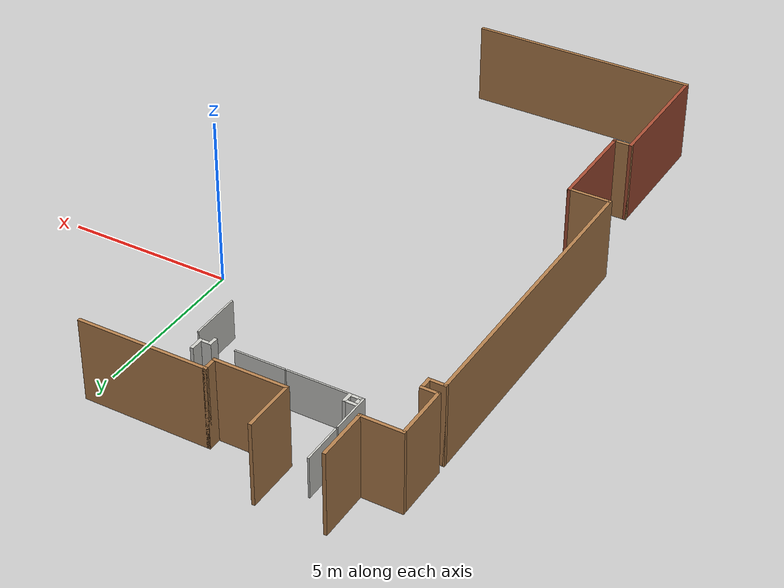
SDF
<sdf version="1.7">
 <model name="miraikan_3F_gate_and_elevator">
  <link name="Wall_331">
   <pose>-9.1375 3.955 0 0 0 -1.5708</pose>
   <visual name="Wall_331_Visual">
    <pose>0 0 0.625 0 -0 0</pose>
    <geometry><box><size>1.25 0.05 1.25</size></box></geometry>
    <material>
     <script><uri>file://media/materials/scripts/gazebo.material</uri><name>Gazebo/CeilingTiled</name></script>
     <ambient>1 1 1 1</ambient>
     <shader type="pixel"/>
    </material>
    <meta><layer>0</layer></meta>
   </visual>
   <collision name="Wall_331_Collision">
    <pose>0 0 0.625 0 -0 0</pose>
    <geometry><box><size>1.25 0.05 1.25</size></box></geometry>
    <surface>
     <friction>
      <ode><mu>1</mu><mu2>1</mu2><fdir1>0 0 0</fdir1><slip1>0</slip1><slip2>0</slip2></ode>
      <torsional>
       <coefficient>1</coefficient>
       <patch_radius>0</patch_radius>
       <surface_radius>0</surface_radius>
       <use_patch_radius>1</use_patch_radius>
       <ode><slip>0</slip></ode>
      </torsional>
     </friction>
     <bounce><restitution_coefficient>0</restitution_coefficient><threshold>1e+06</threshold></bounce>
     <contact>
      <collide_without_contact>0</collide_without_contact>
      <collide_without_contact_bitmask>1</collide_without_contact_bitmask>
      <collide_bitmask>1</collide_bitmask>
      <ode>
       <soft_cfm>0</soft_cfm>
       <soft_erp>0.2</soft_erp>
       <kp>1e+13</kp>
       <kd>1</kd>
       <max_vel>0.01</max_vel>
       <min_depth>0</min_depth>
      </ode>
      <bullet>
       <split_impulse>1</split_impulse>
       <split_impulse_penetration_threshold>-0.01</split_impulse_penetration_threshold>
       <soft_cfm>0</soft_cfm>
       <soft_erp>0.2</soft_erp>
       <kp>1e+13</kp>
       <kd>1</kd>
      </bullet>
     </contact>
    </surface>
   </collision>
  </link>
  <link name="Wall_335">
   <pose>-6.1075 3.355 0 0 -0 0</pose>
   <visual name="Wall_335_Visual">
    <pose>0 0 0.625 0 -0 0</pose>
    <geometry><box><size>1.51 0.05 1.25</size></box></geometry>
    <material>
     <script><uri>file://media/materials/scripts/gazebo.material</uri><name>Gazebo/CeilingTiled</name></script>
     <ambient>1 1 1 1</ambient>
     <shader type="pixel"/>
    </material>
    <meta><layer>0</layer></meta>
   </visual>
   <collision name="Wall_335_Collision">
    <pose>0 0 0.625 0 -0 0</pose>
    <geometry><box><size>1.51 0.05 1.25</size></box></geometry>
    <surface>
     <friction>
      <ode><mu>1</mu><mu2>1</mu2><fdir1>0 0 0</fdir1><slip1>0</slip1><slip2>0</slip2></ode>
      <torsional>
       <coefficient>1</coefficient>
       <patch_radius>0</patch_radius>
       <surface_radius>0</surface_radius>
       <use_patch_radius>1</use_patch_radius>
       <ode><slip>0</slip></ode>
      </torsional>
     </friction>
     <bounce><restitution_coefficient>0</restitution_coefficient><threshold>1e+06</threshold></bounce>
     <contact>
      <collide_without_contact>0</collide_without_contact>
      <collide_without_contact_bitmask>1</collide_without_contact_bitmask>
      <collide_bitmask>1</collide_bitmask>
      <ode>
       <soft_cfm>0</soft_cfm>
       <soft_erp>0.2</soft_erp>
       <kp>1e+13</kp>
       <kd>1</kd>
       <max_vel>0.01</max_vel>
       <min_depth>0</min_depth>
      </ode>
      <bullet>
       <split_impulse>1</split_impulse>
       <split_impulse_penetration_threshold>-0.01</split_impulse_penetration_threshold>
       <soft_cfm>0</soft_cfm>
       <soft_erp>0.2</soft_erp>
       <kp>1e+13</kp>
       <kd>1</kd>
      </bullet>
     </contact>
    </surface>
   </collision>
  </link>
  <link name="Wall_337">
   <pose>-4.1175 2.417 0 0 0 -1.5708</pose>
   <visual name="Wall_337_Visual">
    <pose>0 0 0.625 0 -0 0</pose>
    <geometry><box><size>1.55 0.05 1.25</size></box></geometry>
    <material>
     <script><uri>file://media/materials/scripts/gazebo.material</uri><name>Gazebo/CeilingTiled</name></script>
     <ambient>1 1 1 1</ambient>
     <shader type="pixel"/>
    </material>
    <meta><layer>0</layer></meta>
   </visual>
   <collision name="Wall_337_Collision">
    <pose>0 0 0.625 0 -0 0</pose>
    <geometry><box><size>1.55 0.05 1.25</size></box></geometry>
    <surface>
     <friction>
      <ode><mu>1</mu><mu2>1</mu2><fdir1>0 0 0</fdir1><slip1>0</slip1><slip2>0</slip2></ode>
      <torsional>
       <coefficient>1</coefficient>
       <patch_radius>0</patch_radius>
       <surface_radius>0</surface_radius>
       <use_patch_radius>1</use_patch_radius>
       <ode><slip>0</slip></ode>
      </torsional>
     </friction>
     <bounce><restitution_coefficient>0</restitution_coefficient><threshold>1e+06</threshold></bounce>
     <contact>
      <collide_without_contact>0</collide_without_contact>
      <collide_without_contact_bitmask>1</collide_without_contact_bitmask>
      <collide_bitmask>1</collide_bitmask>
      <ode>
       <soft_cfm>0</soft_cfm>
       <soft_erp>0.2</soft_erp>
       <kp>1e+13</kp>
       <kd>1</kd>
       <max_vel>0.01</max_vel>
       <min_depth>0</min_depth>
      </ode>
      <bullet>
       <split_impulse>1</split_impulse>
       <split_impulse_penetration_threshold>-0.01</split_impulse_penetration_threshold>
       <soft_cfm>0</soft_cfm>
       <soft_erp>0.2</soft_erp>
       <kp>1e+13</kp>
       <kd>1</kd>
      </bullet>
     </contact>
    </surface>
   </collision>
  </link>
  <link name="Wall_36">
   <pose>-10.1425 5.965 0 0 0 -1.5708</pose>
   <visual name="Wall_36_Visual">
    <pose>0 0 1.25 0 -0 0</pose>
    <geometry><box><size>1.63 0.1 2.5</size></box></geometry>
    <material>
     <script><uri>file://media/materials/scripts/gazebo.material</uri><name>Gazebo/Wood</name></script>
     <ambient>1 1 1 1</ambient>
     <shader type="pixel"/>
    </material>
    <meta><layer>0</layer></meta>
   </visual>
   <collision name="Wall_36_Collision">
    <pose>0 0 1.25 0 -0 0</pose>
    <geometry><box><size>1.63 0.1 2.5</size></box></geometry>
    <surface>
     <friction>
      <ode><mu>1</mu><mu2>1</mu2><fdir1>0 0 0</fdir1><slip1>0</slip1><slip2>0</slip2></ode>
      <torsional>
       <coefficient>1</coefficient>
       <patch_radius>0</patch_radius>
       <surface_radius>0</surface_radius>
       <use_patch_radius>1</use_patch_radius>
       <ode><slip>0</slip></ode>
      </torsional>
     </friction>
     <bounce><restitution_coefficient>0</restitution_coefficient><threshold>1e+06</threshold></bounce>
     <contact>
      <collide_without_contact>0</collide_without_contact>
      <collide_without_contact_bitmask>1</collide_without_contact_bitmask>
      <collide_bitmask>1</collide_bitmask>
      <ode>
       <soft_cfm>0</soft_cfm>
       <soft_erp>0.2</soft_erp>
       <kp>1e+13</kp>
       <kd>1</kd>
       <max_vel>0.01</max_vel>
       <min_depth>0</min_depth>
      </ode>
      <bullet>
       <split_impulse>1</split_impulse>
       <split_impulse_penetration_threshold>-0.01</split_impulse_penetration_threshold>
       <soft_cfm>0</soft_cfm>
       <soft_erp>0.2</soft_erp>
       <kp>1e+13</kp>
       <kd>1</kd>
      </bullet>
     </contact>
    </surface>
   </collision>
  </link>
  <link name="Wall_38">
   <pose>-10.7325 5.2 0 0 -0 3.14159</pose>
   <visual name="Wall_38_Visual">
    <pose>0 0 1.25 0 -0 0</pose>
    <geometry><box><size>1.28 0.1 2.5</size></box></geometry>
    <material>
     <script><uri>file://media/materials/scripts/gazebo.material</uri><name>Gazebo/Wood</name></script>
     <ambient>1 1 1 1</ambient>
     <shader type="pixel"/>
    </material>
    <meta><layer>0</layer></meta>
   </visual>
   <collision name="Wall_38_Collision">
    <pose>0 0 1.25 0 -0 0</pose>
    <geometry><box><size>1.28 0.1 2.5</size></box></geometry>
    <surface>
     <friction>
      <ode><mu>1</mu><mu2>1</mu2><fdir1>0 0 0</fdir1><slip1>0</slip1><slip2>0</slip2></ode>
      <torsional>
       <coefficient>1</coefficient>
       <patch_radius>0</patch_radius>
       <surface_radius>0</surface_radius>
       <use_patch_radius>1</use_patch_radius>
       <ode><slip>0</slip></ode>
      </torsional>
     </friction>
     <bounce><restitution_coefficient>0</restitution_coefficient><threshold>1e+06</threshold></bounce>
     <contact>
      <collide_without_contact>0</collide_without_contact>
      <collide_without_contact_bitmask>1</collide_without_contact_bitmask>
      <collide_bitmask>1</collide_bitmask>
      <ode>
       <soft_cfm>0</soft_cfm>
       <soft_erp>0.2</soft_erp>
       <kp>1e+13</kp>
       <kd>1</kd>
       <max_vel>0.01</max_vel>
       <min_depth>0</min_depth>
      </ode>
      <bullet>
       <split_impulse>1</split_impulse>
       <split_impulse_penetration_threshold>-0.01</split_impulse_penetration_threshold>
       <soft_cfm>0</soft_cfm>
       <soft_erp>0.2</soft_erp>
       <kp>1e+13</kp>
       <kd>1</kd>
      </bullet>
     </contact>
    </surface>
   </collision>
  </link>
  <link name="Wall_40">
   <pose>-11.3225 4.39 0 0 0 -1.5708</pose>
   <visual name="Wall_40_Visual">
    <pose>0 0 1.25 0 -0 0</pose>
    <geometry><box><size>1.72 0.1 2.5</size></box></geometry>
    <material>
     <script><uri>file://media/materials/scripts/gazebo.material</uri><name>Gazebo/Wood</name></script>
     <ambient>1 1 1 1</ambient>
     <shader type="pixel"/>
    </material>
    <meta><layer>0</layer></meta>
   </visual>
   <collision name="Wall_40_Collision">
    <pose>0 0 1.25 0 -0 0</pose>
    <geometry><box><size>1.72 0.1 2.5</size></box></geometry>
    <surface>
     <friction>
      <ode><mu>1</mu><mu2>1</mu2><fdir1>0 0 0</fdir1><slip1>0</slip1><slip2>0</slip2></ode>
      <torsional>
       <coefficient>1</coefficient>
       <patch_radius>0</patch_radius>
       <surface_radius>0</surface_radius>
       <use_patch_radius>1</use_patch_radius>
       <ode><slip>0</slip></ode>
      </torsional>
     </friction>
     <bounce><restitution_coefficient>0</restitution_coefficient><threshold>1e+06</threshold></bounce>
     <contact>
      <collide_without_contact>0</collide_without_contact>
      <collide_without_contact_bitmask>1</collide_without_contact_bitmask>
      <collide_bitmask>1</collide_bitmask>
      <ode>
       <soft_cfm>0</soft_cfm>
       <soft_erp>0.2</soft_erp>
       <kp>1e+13</kp>
       <kd>1</kd>
       <max_vel>0.01</max_vel>
       <min_depth>0</min_depth>
      </ode>
      <bullet>
       <split_impulse>1</split_impulse>
       <split_impulse_penetration_threshold>-0.01</split_impulse_penetration_threshold>
       <soft_cfm>0</soft_cfm>
       <soft_erp>0.2</soft_erp>
       <kp>1e+13</kp>
       <kd>1</kd>
      </bullet>
     </contact>
    </surface>
   </collision>
  </link>
  <link name="Wall_404">
   <pose>-7.8075 3.355 0 0 -0 3.14159</pose>
   <visual name="Wall_404_Visual">
    <pose>0 0 0.625 0 -0 0</pose>
    <geometry><box><size>1.81 0.05 1.25</size></box></geometry>
    <material>
     <script><uri>file://media/materials/scripts/gazebo.material</uri><name>Gazebo/CeilingTiled</name></script>
     <ambient>1 1 1 1</ambient>
     <shader type="pixel"/>
    </material>
    <meta><layer>0</layer></meta>
   </visual>
   <collision name="Wall_404_Collision">
    <pose>0 0 0.625 0 -0 0</pose>
    <geometry><box><size>1.81 0.05 1.25</size></box></geometry>
    <surface>
     <friction>
      <ode><mu>1</mu><mu2>1</mu2><fdir1>0 0 0</fdir1><slip1>0</slip1><slip2>0</slip2></ode>
      <torsional>
       <coefficient>1</coefficient>
       <patch_radius>0</patch_radius>
       <surface_radius>0</surface_radius>
       <use_patch_radius>1</use_patch_radius>
       <ode><slip>0</slip></ode>
      </torsional>
     </friction>
     <bounce><restitution_coefficient>0</restitution_coefficient><threshold>1e+06</threshold></bounce>
     <contact>
      <collide_without_contact>0</collide_without_contact>
      <collide_without_contact_bitmask>1</collide_without_contact_bitmask>
      <collide_bitmask>1</collide_bitmask>
      <ode>
       <soft_cfm>0</soft_cfm>
       <soft_erp>0.2</soft_erp>
       <kp>1e+13</kp>
       <kd>1</kd>
       <max_vel>0.01</max_vel>
       <min_depth>0</min_depth>
      </ode>
      <bullet>
       <split_impulse>1</split_impulse>
       <split_impulse_penetration_threshold>-0.01</split_impulse_penetration_threshold>
       <soft_cfm>0</soft_cfm>
       <soft_erp>0.2</soft_erp>
       <kp>1e+13</kp>
       <kd>1</kd>
      </bullet>
     </contact>
    </surface>
   </collision>
  </link>
  <link name="Wall_408">
   <pose>-8.7625 3.505 0 0 0 -1.5708</pose>
   <visual name="Wall_408_Visual">
    <pose>0 0 0.625 0 -0 0</pose>
    <geometry><box><size>0.35 0.1 1.25</size></box></geometry>
    <material>
     <script><uri>file://media/materials/scripts/gazebo.material</uri><name>Gazebo/CeilingTiled</name></script>
     <ambient>1 1 1 1</ambient>
     <shader type="pixel"/>
    </material>
    <meta><layer>0</layer></meta>
   </visual>
   <collision name="Wall_408_Collision">
    <pose>0 0 0.625 0 -0 0</pose>
    <geometry><box><size>0.35 0.1 1.25</size></box></geometry>
    <surface>
     <friction>
      <ode><mu>1</mu><mu2>1</mu2><fdir1>0 0 0</fdir1><slip1>0</slip1><slip2>0</slip2></ode>
      <torsional>
       <coefficient>1</coefficient>
       <patch_radius>0</patch_radius>
       <surface_radius>0</surface_radius>
       <use_patch_radius>1</use_patch_radius>
       <ode><slip>0</slip></ode>
      </torsional>
     </friction>
     <bounce><restitution_coefficient>0</restitution_coefficient><threshold>1e+06</threshold></bounce>
     <contact>
      <collide_without_contact>0</collide_without_contact>
      <collide_without_contact_bitmask>1</collide_without_contact_bitmask>
      <collide_bitmask>1</collide_bitmask>
      <ode>
       <soft_cfm>0</soft_cfm>
       <soft_erp>0.2</soft_erp>
       <kp>1e+13</kp>
       <kd>1</kd>
       <max_vel>0.01</max_vel>
       <min_depth>0</min_depth>
      </ode>
      <bullet>
       <split_impulse>1</split_impulse>
       <split_impulse_penetration_threshold>-0.01</split_impulse_penetration_threshold>
       <soft_cfm>0</soft_cfm>
       <soft_erp>0.2</soft_erp>
       <kp>1e+13</kp>
       <kd>1</kd>
      </bullet>
     </contact>
    </surface>
   </collision>
  </link>
  <link name="Wall_410">
   <pose>-8.9125 3.63 0 0 -0 3.14159</pose>
   <visual name="Wall_410_Visual">
    <pose>0 0 0.625 0 -0 0</pose>
    <geometry><box><size>0.4 0.1 1.25</size></box></geometry>
    <material>
     <script><uri>file://media/materials/scripts/gazebo.material</uri><name>Gazebo/CeilingTiled</name></script>
     <ambient>1 1 1 1</ambient>
     <shader type="pixel"/>
    </material>
    <meta><layer>0</layer></meta>
   </visual>
   <collision name="Wall_410_Collision">
    <pose>0 0 0.625 0 -0 0</pose>
    <geometry><box><size>0.4 0.1 1.25</size></box></geometry>
    <surface>
     <friction>
      <ode><mu>1</mu><mu2>1</mu2><fdir1>0 0 0</fdir1><slip1>0</slip1><slip2>0</slip2></ode>
      <torsional>
       <coefficient>1</coefficient>
       <patch_radius>0</patch_radius>
       <surface_radius>0</surface_radius>
       <use_patch_radius>1</use_patch_radius>
       <ode><slip>0</slip></ode>
      </torsional>
     </friction>
     <bounce><restitution_coefficient>0</restitution_coefficient><threshold>1e+06</threshold></bounce>
     <contact>
      <collide_without_contact>0</collide_without_contact>
      <collide_without_contact_bitmask>1</collide_without_contact_bitmask>
      <collide_bitmask>1</collide_bitmask>
      <ode>
       <soft_cfm>0</soft_cfm>
       <soft_erp>0.2</soft_erp>
       <kp>1e+13</kp>
       <kd>1</kd>
       <max_vel>0.01</max_vel>
       <min_depth>0</min_depth>
      </ode>
      <bullet>
       <split_impulse>1</split_impulse>
       <split_impulse_penetration_threshold>-0.01</split_impulse_penetration_threshold>
       <soft_cfm>0</soft_cfm>
       <soft_erp>0.2</soft_erp>
       <kp>1e+13</kp>
       <kd>1</kd>
      </bullet>
     </contact>
    </surface>
   </collision>
  </link>
  <link name="Wall_413">
   <pose>-9.0625 3.505 0 0 0 -1.5708</pose>
   <visual name="Wall_413_Visual">
    <pose>0 0 0.625 0 -0 0</pose>
    <geometry><box><size>0.35 0.1 1.25</size></box></geometry>
    <material>
     <script><uri>file://media/materials/scripts/gazebo.material</uri><name>Gazebo/CeilingTiled</name></script>
     <ambient>1 1 1 1</ambient>
     <shader type="pixel"/>
    </material>
    <meta><layer>0</layer></meta>
   </visual>
   <collision name="Wall_413_Collision">
    <pose>0 0 0.625 0 -0 0</pose>
    <geometry><box><size>0.35 0.1 1.25</size></box></geometry>
    <surface>
     <friction>
      <ode><mu>1</mu><mu2>1</mu2><fdir1>0 0 0</fdir1><slip1>0</slip1><slip2>0</slip2></ode>
      <torsional>
       <coefficient>1</coefficient>
       <patch_radius>0</patch_radius>
       <surface_radius>0</surface_radius>
       <use_patch_radius>1</use_patch_radius>
       <ode><slip>0</slip></ode>
      </torsional>
     </friction>
     <bounce><restitution_coefficient>0</restitution_coefficient><threshold>1e+06</threshold></bounce>
     <contact>
      <collide_without_contact>0</collide_without_contact>
      <collide_without_contact_bitmask>1</collide_without_contact_bitmask>
      <collide_bitmask>1</collide_bitmask>
      <ode>
       <soft_cfm>0</soft_cfm>
       <soft_erp>0.2</soft_erp>
       <kp>1e+13</kp>
       <kd>1</kd>
       <max_vel>0.01</max_vel>
       <min_depth>0</min_depth>
      </ode>
      <bullet>
       <split_impulse>1</split_impulse>
       <split_impulse_penetration_threshold>-0.01</split_impulse_penetration_threshold>
       <soft_cfm>0</soft_cfm>
       <soft_erp>0.2</soft_erp>
       <kp>1e+13</kp>
       <kd>1</kd>
      </bullet>
     </contact>
    </surface>
   </collision>
  </link>
  <link name="Wall_416">
   <pose>-8.9125 3.38 0 0 -0 0</pose>
   <visual name="Wall_416_Visual">
    <pose>0 0 0.625 0 -0 0</pose>
    <geometry><box><size>0.4 0.1 1.25</size></box></geometry>
    <material>
     <script><uri>file://media/materials/scripts/gazebo.material</uri><name>Gazebo/CeilingTiled</name></script>
     <ambient>1 1 1 1</ambient>
     <shader type="pixel"/>
    </material>
    <meta><layer>0</layer></meta>
   </visual>
   <collision name="Wall_416_Collision">
    <pose>0 0 0.625 0 -0 0</pose>
    <geometry><box><size>0.4 0.1 1.25</size></box></geometry>
    <surface>
     <friction>
      <ode><mu>1</mu><mu2>1</mu2><fdir1>0 0 0</fdir1><slip1>0</slip1><slip2>0</slip2></ode>
      <torsional>
       <coefficient>1</coefficient>
       <patch_radius>0</patch_radius>
       <surface_radius>0</surface_radius>
       <use_patch_radius>1</use_patch_radius>
       <ode><slip>0</slip></ode>
      </torsional>
     </friction>
     <bounce><restitution_coefficient>0</restitution_coefficient><threshold>1e+06</threshold></bounce>
     <contact>
      <collide_without_contact>0</collide_without_contact>
      <collide_without_contact_bitmask>1</collide_without_contact_bitmask>
      <collide_bitmask>1</collide_bitmask>
      <ode>
       <soft_cfm>0</soft_cfm>
       <soft_erp>0.2</soft_erp>
       <kp>1e+13</kp>
       <kd>1</kd>
       <max_vel>0.01</max_vel>
       <min_depth>0</min_depth>
      </ode>
      <bullet>
       <split_impulse>1</split_impulse>
       <split_impulse_penetration_threshold>-0.01</split_impulse_penetration_threshold>
       <soft_cfm>0</soft_cfm>
       <soft_erp>0.2</soft_erp>
       <kp>1e+13</kp>
       <kd>1</kd>
      </bullet>
     </contact>
    </surface>
   </collision>
  </link>
  <link name="Wall_42">
   <pose>-11.0975 3.58 0 0 -0 0</pose>
   <visual name="Wall_42_Visual">
    <pose>0 0 1.25 0 -0 0</pose>
    <geometry><box><size>0.55 0.1 2.5</size></box></geometry>
    <material>
     <script><uri>file://media/materials/scripts/gazebo.material</uri><name>Gazebo/Wood</name></script>
     <ambient>1 1 1 1</ambient>
     <shader type="pixel"/>
    </material>
    <meta><layer>0</layer></meta>
   </visual>
   <collision name="Wall_42_Collision">
    <pose>0 0 1.25 0 -0 0</pose>
    <geometry><box><size>0.55 0.1 2.5</size></box></geometry>
    <surface>
     <friction>
      <ode><mu>1</mu><mu2>1</mu2><fdir1>0 0 0</fdir1><slip1>0</slip1><slip2>0</slip2></ode>
      <torsional>
       <coefficient>1</coefficient>
       <patch_radius>0</patch_radius>
       <surface_radius>0</surface_radius>
       <use_patch_radius>1</use_patch_radius>
       <ode><slip>0</slip></ode>
      </torsional>
     </friction>
     <bounce><restitution_coefficient>0</restitution_coefficient><threshold>1e+06</threshold></bounce>
     <contact>
      <collide_without_contact>0</collide_without_contact>
      <collide_without_contact_bitmask>1</collide_without_contact_bitmask>
      <collide_bitmask>1</collide_bitmask>
      <ode>
       <soft_cfm>0</soft_cfm>
       <soft_erp>0.2</soft_erp>
       <kp>1e+13</kp>
       <kd>1</kd>
       <max_vel>0.01</max_vel>
       <min_depth>0</min_depth>
      </ode>
      <bullet>
       <split_impulse>1</split_impulse>
       <split_impulse_penetration_threshold>-0.01</split_impulse_penetration_threshold>
       <soft_cfm>0</soft_cfm>
       <soft_erp>0.2</soft_erp>
       <kp>1e+13</kp>
       <kd>1</kd>
      </bullet>
     </contact>
    </surface>
   </collision>
  </link>
  <link name="Wall_425">
   <pose>-4.6665 3.342 0 0 -0 1.5708</pose>
   <visual name="Wall_425_Visual">
    <pose>0 0 0.625 0 -0 0</pose>
    <geometry><box><size>0.3 0.1 1.25</size></box></geometry>
    <material>
     <script><uri>file://media/materials/scripts/gazebo.material</uri><name>Gazebo/CeilingTiled</name></script>
     <ambient>1 1 1 1</ambient>
     <shader type="pixel"/>
    </material>
    <meta><layer>0</layer></meta>
   </visual>
   <collision name="Wall_425_Collision">
    <pose>0 0 0.625 0 -0 0</pose>
    <geometry><box><size>0.3 0.1 1.25</size></box></geometry>
    <surface>
     <friction>
      <ode><mu>1</mu><mu2>1</mu2><fdir1>0 0 0</fdir1><slip1>0</slip1><slip2>0</slip2></ode>
      <torsional>
       <coefficient>1</coefficient>
       <patch_radius>0</patch_radius>
       <surface_radius>0</surface_radius>
       <use_patch_radius>1</use_patch_radius>
       <ode><slip>0</slip></ode>
      </torsional>
     </friction>
     <bounce><restitution_coefficient>0</restitution_coefficient><threshold>1e+06</threshold></bounce>
     <contact>
      <collide_without_contact>0</collide_without_contact>
      <collide_without_contact_bitmask>1</collide_without_contact_bitmask>
      <collide_bitmask>1</collide_bitmask>
      <ode>
       <soft_cfm>0</soft_cfm>
       <soft_erp>0.2</soft_erp>
       <kp>1e+13</kp>
       <kd>1</kd>
       <max_vel>0.01</max_vel>
       <min_depth>0</min_depth>
      </ode>
      <bullet>
       <split_impulse>1</split_impulse>
       <split_impulse_penetration_threshold>-0.01</split_impulse_penetration_threshold>
       <soft_cfm>0</soft_cfm>
       <soft_erp>0.2</soft_erp>
       <kp>1e+13</kp>
       <kd>1</kd>
      </bullet>
     </contact>
    </surface>
   </collision>
  </link>
  <link name="Wall_428">
   <pose>-4.5165 3.442 0 0 -0 0</pose>
   <visual name="Wall_428_Visual">
    <pose>0 0 0.625 0 -0 0</pose>
    <geometry><box><size>0.4 0.1 1.25</size></box></geometry>
    <material>
     <script><uri>file://media/materials/scripts/gazebo.material</uri><name>Gazebo/CeilingTiled</name></script>
     <ambient>1 1 1 1</ambient>
     <shader type="pixel"/>
    </material>
    <meta><layer>0</layer></meta>
   </visual>
   <collision name="Wall_428_Collision">
    <pose>0 0 0.625 0 -0 0</pose>
    <geometry><box><size>0.4 0.1 1.25</size></box></geometry>
    <surface>
     <friction>
      <ode><mu>1</mu><mu2>1</mu2><fdir1>0 0 0</fdir1><slip1>0</slip1><slip2>0</slip2></ode>
      <torsional>
       <coefficient>1</coefficient>
       <patch_radius>0</patch_radius>
       <surface_radius>0</surface_radius>
       <use_patch_radius>1</use_patch_radius>
       <ode><slip>0</slip></ode>
      </torsional>
     </friction>
     <bounce><restitution_coefficient>0</restitution_coefficient><threshold>1e+06</threshold></bounce>
     <contact>
      <collide_without_contact>0</collide_without_contact>
      <collide_without_contact_bitmask>1</collide_without_contact_bitmask>
      <collide_bitmask>1</collide_bitmask>
      <ode>
       <soft_cfm>0</soft_cfm>
       <soft_erp>0.2</soft_erp>
       <kp>1e+13</kp>
       <kd>1</kd>
       <max_vel>0.01</max_vel>
       <min_depth>0</min_depth>
      </ode>
      <bullet>
       <split_impulse>1</split_impulse>
       <split_impulse_penetration_threshold>-0.01</split_impulse_penetration_threshold>
       <soft_cfm>0</soft_cfm>
       <soft_erp>0.2</soft_erp>
       <kp>1e+13</kp>
       <kd>1</kd>
      </bullet>
     </contact>
    </surface>
   </collision>
  </link>
  <link name="Wall_440">
   <pose>-4.3665 3.617 0 0 -0 1.5708</pose>
   <visual name="Wall_440_Visual">
    <pose>0 0 0.625 0 -0 0</pose>
    <geometry><box><size>0.45 0.1 1.25</size></box></geometry>
    <material>
     <script><uri>file://media/materials/scripts/gazebo.material</uri><name>Gazebo/CeilingTiled</name></script>
     <ambient>1 1 1 1</ambient>
     <shader type="pixel"/>
    </material>
    <meta><layer>0</layer></meta>
   </visual>
   <collision name="Wall_440_Collision">
    <pose>0 0 0.625 0 -0 0</pose>
    <geometry><box><size>0.45 0.1 1.25</size></box></geometry>
    <surface>
     <friction>
      <ode><mu>1</mu><mu2>1</mu2><fdir1>0 0 0</fdir1><slip1>0</slip1><slip2>0</slip2></ode>
      <torsional>
       <coefficient>1</coefficient>
       <patch_radius>0</patch_radius>
       <surface_radius>0</surface_radius>
       <use_patch_radius>1</use_patch_radius>
       <ode><slip>0</slip></ode>
      </torsional>
     </friction>
     <bounce><restitution_coefficient>0</restitution_coefficient><threshold>1e+06</threshold></bounce>
     <contact>
      <collide_without_contact>0</collide_without_contact>
      <collide_without_contact_bitmask>1</collide_without_contact_bitmask>
      <collide_bitmask>1</collide_bitmask>
      <ode>
       <soft_cfm>0</soft_cfm>
       <soft_erp>0.2</soft_erp>
       <kp>1e+13</kp>
       <kd>1</kd>
       <max_vel>0.01</max_vel>
       <min_depth>0</min_depth>
      </ode>
      <bullet>
       <split_impulse>1</split_impulse>
       <split_impulse_penetration_threshold>-0.01</split_impulse_penetration_threshold>
       <soft_cfm>0</soft_cfm>
       <soft_erp>0.2</soft_erp>
       <kp>1e+13</kp>
       <kd>1</kd>
      </bullet>
     </contact>
    </surface>
   </collision>
  </link>
  <link name="Wall_45">
   <pose>-10.8725 3.405 0 0 0 -1.5708</pose>
   <visual name="Wall_45_Visual">
    <pose>0 0 1.25 0 -0 0</pose>
    <geometry><box><size>0.45 0.1 2.5</size></box></geometry>
    <material>
     <script><uri>file://media/materials/scripts/gazebo.material</uri><name>Gazebo/Wood</name></script>
     <ambient>1 1 1 1</ambient>
     <shader type="pixel"/>
    </material>
    <meta><layer>0</layer></meta>
   </visual>
   <collision name="Wall_45_Collision">
    <pose>0 0 1.25 0 -0 0</pose>
    <geometry><box><size>0.45 0.1 2.5</size></box></geometry>
    <surface>
     <friction>
      <ode><mu>1</mu><mu2>1</mu2><fdir1>0 0 0</fdir1><slip1>0</slip1><slip2>0</slip2></ode>
      <torsional>
       <coefficient>1</coefficient>
       <patch_radius>0</patch_radius>
       <surface_radius>0</surface_radius>
       <use_patch_radius>1</use_patch_radius>
       <ode><slip>0</slip></ode>
      </torsional>
     </friction>
     <bounce><restitution_coefficient>0</restitution_coefficient><threshold>1e+06</threshold></bounce>
     <contact>
      <collide_without_contact>0</collide_without_contact>
      <collide_without_contact_bitmask>1</collide_without_contact_bitmask>
      <collide_bitmask>1</collide_bitmask>
      <ode>
       <soft_cfm>0</soft_cfm>
       <soft_erp>0.2</soft_erp>
       <kp>1e+13</kp>
       <kd>1</kd>
       <max_vel>0.01</max_vel>
       <min_depth>0</min_depth>
      </ode>
      <bullet>
       <split_impulse>1</split_impulse>
       <split_impulse_penetration_threshold>-0.01</split_impulse_penetration_threshold>
       <soft_cfm>0</soft_cfm>
       <soft_erp>0.2</soft_erp>
       <kp>1e+13</kp>
       <kd>1</kd>
      </bullet>
     </contact>
    </surface>
   </collision>
  </link>
  <link name="Wall_450">
   <pose>-9.1375 5.265 0 0 0 -1.5708</pose>
   <visual name="Wall_450_Visual">
    <pose>0 0 0.625 0 -0 0</pose>
    <geometry><box><size>1.25 0.05 1.25</size></box></geometry>
    <material>
     <script><uri>file://media/materials/scripts/gazebo.material</uri><name>Gazebo/CeilingTiled</name></script>
     <ambient>1 1 1 1</ambient>
     <shader type="pixel"/>
    </material>
    <meta><layer>0</layer></meta>
   </visual>
   <collision name="Wall_450_Collision">
    <pose>0 0 0.625 0 -0 0</pose>
    <geometry><box><size>1.25 0.05 1.25</size></box></geometry>
    <surface>
     <friction>
      <ode><mu>1</mu><mu2>1</mu2><fdir1>0 0 0</fdir1><slip1>0</slip1><slip2>0</slip2></ode>
      <torsional>
       <coefficient>1</coefficient>
       <patch_radius>0</patch_radius>
       <surface_radius>0</surface_radius>
       <use_patch_radius>1</use_patch_radius>
       <ode><slip>0</slip></ode>
      </torsional>
     </friction>
     <bounce><restitution_coefficient>0</restitution_coefficient><threshold>1e+06</threshold></bounce>
     <contact>
      <collide_without_contact>0</collide_without_contact>
      <collide_without_contact_bitmask>1</collide_without_contact_bitmask>
      <collide_bitmask>1</collide_bitmask>
      <ode>
       <soft_cfm>0</soft_cfm>
       <soft_erp>0.2</soft_erp>
       <kp>1e+13</kp>
       <kd>1</kd>
       <max_vel>0.01</max_vel>
       <min_depth>0</min_depth>
      </ode>
      <bullet>
       <split_impulse>1</split_impulse>
       <split_impulse_penetration_threshold>-0.01</split_impulse_penetration_threshold>
       <soft_cfm>0</soft_cfm>
       <soft_erp>0.2</soft_erp>
       <kp>1e+13</kp>
       <kd>1</kd>
      </bullet>
     </contact>
    </surface>
   </collision>
  </link>
  <link name="Wall_47">
   <pose>-11.0975 3.23 0 0 -0 3.14159</pose>
   <visual name="Wall_47_Visual">
    <pose>0 0 1.25 0 -0 0</pose>
    <geometry><box><size>0.55 0.1 2.5</size></box></geometry>
    <material>
     <script><uri>file://media/materials/scripts/gazebo.material</uri><name>Gazebo/Wood</name></script>
     <ambient>1 1 1 1</ambient>
     <shader type="pixel"/>
    </material>
    <meta><layer>0</layer></meta>
   </visual>
   <collision name="Wall_47_Collision">
    <pose>0 0 1.25 0 -0 0</pose>
    <geometry><box><size>0.55 0.1 2.5</size></box></geometry>
    <surface>
     <friction>
      <ode><mu>1</mu><mu2>1</mu2><fdir1>0 0 0</fdir1><slip1>0</slip1><slip2>0</slip2></ode>
      <torsional>
       <coefficient>1</coefficient>
       <patch_radius>0</patch_radius>
       <surface_radius>0</surface_radius>
       <use_patch_radius>1</use_patch_radius>
       <ode><slip>0</slip></ode>
      </torsional>
     </friction>
     <bounce><restitution_coefficient>0</restitution_coefficient><threshold>1e+06</threshold></bounce>
     <contact>
      <collide_without_contact>0</collide_without_contact>
      <collide_without_contact_bitmask>1</collide_without_contact_bitmask>
      <collide_bitmask>1</collide_bitmask>
      <ode>
       <soft_cfm>0</soft_cfm>
       <soft_erp>0.2</soft_erp>
       <kp>1e+13</kp>
       <kd>1</kd>
       <max_vel>0.01</max_vel>
       <min_depth>0</min_depth>
      </ode>
      <bullet>
       <split_impulse>1</split_impulse>
       <split_impulse_penetration_threshold>-0.01</split_impulse_penetration_threshold>
       <soft_cfm>0</soft_cfm>
       <soft_erp>0.2</soft_erp>
       <kp>1e+13</kp>
       <kd>1</kd>
      </bullet>
     </contact>
    </surface>
   </collision>
  </link>
  <link name="Wall_49">
   <pose>-11.3225 -1.32 0 0 0 -1.5708</pose>
   <visual name="Wall_49_Visual">
    <pose>0 0 1.25 0 -0 0</pose>
    <geometry><box><size>9.2 0.1 2.5</size></box></geometry>
    <material>
     <script><uri>file://media/materials/scripts/gazebo.material</uri><name>Gazebo/Wood</name></script>
     <ambient>1 1 1 1</ambient>
     <shader type="pixel"/>
    </material>
    <meta><layer>0</layer></meta>
   </visual>
   <collision name="Wall_49_Collision">
    <pose>0 0 1.25 0 -0 0</pose>
    <geometry><box><size>9.2 0.1 2.5</size></box></geometry>
    <surface>
     <friction>
      <ode><mu>1</mu><mu2>1</mu2><fdir1>0 0 0</fdir1><slip1>0</slip1><slip2>0</slip2></ode>
      <torsional>
       <coefficient>1</coefficient>
       <patch_radius>0</patch_radius>
       <surface_radius>0</surface_radius>
       <use_patch_radius>1</use_patch_radius>
       <ode><slip>0</slip></ode>
      </torsional>
     </friction>
     <bounce><restitution_coefficient>0</restitution_coefficient><threshold>1e+06</threshold></bounce>
     <contact>
      <collide_without_contact>0</collide_without_contact>
      <collide_without_contact_bitmask>1</collide_without_contact_bitmask>
      <collide_bitmask>1</collide_bitmask>
      <ode>
       <soft_cfm>0</soft_cfm>
       <soft_erp>0.2</soft_erp>
       <kp>1e+13</kp>
       <kd>1</kd>
       <max_vel>0.01</max_vel>
       <min_depth>0</min_depth>
      </ode>
      <bullet>
       <split_impulse>1</split_impulse>
       <split_impulse_penetration_threshold>-0.01</split_impulse_penetration_threshold>
       <soft_cfm>0</soft_cfm>
       <soft_erp>0.2</soft_erp>
       <kp>1e+13</kp>
       <kd>1</kd>
      </bullet>
     </contact>
    </surface>
   </collision>
  </link>
  <link name="Wall_51">
   <pose>-10.7225 -5.87 0 0 -0 0</pose>
   <visual name="Wall_51_Visual">
    <pose>0 0 1.25 0 -0 0</pose>
    <geometry><box><size>1.3 0.1 2.5</size></box></geometry>
    <material>
     <script><uri>file://media/materials/scripts/gazebo.material</uri><name>Gazebo/Wood</name></script>
     <ambient>1 1 1 1</ambient>
     <shader type="pixel"/>
    </material>
    <meta><layer>0</layer></meta>
   </visual>
   <collision name="Wall_51_Collision">
    <pose>0 0 1.25 0 -0 0</pose>
    <geometry><box><size>1.3 0.1 2.5</size></box></geometry>
    <surface>
     <friction>
      <ode><mu>1</mu><mu2>1</mu2><fdir1>0 0 0</fdir1><slip1>0</slip1><slip2>0</slip2></ode>
      <torsional>
       <coefficient>1</coefficient>
       <patch_radius>0</patch_radius>
       <surface_radius>0</surface_radius>
       <use_patch_radius>1</use_patch_radius>
       <ode><slip>0</slip></ode>
      </torsional>
     </friction>
     <bounce><restitution_coefficient>0</restitution_coefficient><threshold>1e+06</threshold></bounce>
     <contact>
      <collide_without_contact>0</collide_without_contact>
      <collide_without_contact_bitmask>1</collide_without_contact_bitmask>
      <collide_bitmask>1</collide_bitmask>
      <ode>
       <soft_cfm>0</soft_cfm>
       <soft_erp>0.2</soft_erp>
       <kp>1e+13</kp>
       <kd>1</kd>
       <max_vel>0.01</max_vel>
       <min_depth>0</min_depth>
      </ode>
      <bullet>
       <split_impulse>1</split_impulse>
       <split_impulse_penetration_threshold>-0.01</split_impulse_penetration_threshold>
       <soft_cfm>0</soft_cfm>
       <soft_erp>0.2</soft_erp>
       <kp>1e+13</kp>
       <kd>1</kd>
      </bullet>
     </contact>
    </surface>
   </collision>
  </link>
  <link name="Wall_53">
   <pose>-10.1225 -7.32 0 0 0 -1.5708</pose>
   <visual name="Wall_53_Visual">
    <pose>0 0 1.25 0 -0 0</pose>
    <geometry><box><size>3 0.1 2.5</size></box></geometry>
    <material>
     <script><uri>file://media/materials/scripts/gazebo.material</uri><name>Gazebo/Bricks</name></script>
     <ambient>1 1 1 1</ambient>
     <shader type="pixel"/>
    </material>
    <meta><layer>0</layer></meta>
   </visual>
   <collision name="Wall_53_Collision">
    <pose>0 0 1.25 0 -0 0</pose>
    <geometry><box><size>3 0.1 2.5</size></box></geometry>
    <surface>
     <friction>
      <ode><mu>1</mu><mu2>1</mu2><fdir1>0 0 0</fdir1><slip1>0</slip1><slip2>0</slip2></ode>
      <torsional>
       <coefficient>1</coefficient>
       <patch_radius>0</patch_radius>
       <surface_radius>0</surface_radius>
       <use_patch_radius>1</use_patch_radius>
       <ode><slip>0</slip></ode>
      </torsional>
     </friction>
     <bounce><restitution_coefficient>0</restitution_coefficient><threshold>1e+06</threshold></bounce>
     <contact>
      <collide_without_contact>0</collide_without_contact>
      <collide_without_contact_bitmask>1</collide_without_contact_bitmask>
      <collide_bitmask>1</collide_bitmask>
      <ode>
       <soft_cfm>0</soft_cfm>
       <soft_erp>0.2</soft_erp>
       <kp>1e+13</kp>
       <kd>1</kd>
       <max_vel>0.01</max_vel>
       <min_depth>0</min_depth>
      </ode>
      <bullet>
       <split_impulse>1</split_impulse>
       <split_impulse_penetration_threshold>-0.01</split_impulse_penetration_threshold>
       <soft_cfm>0</soft_cfm>
       <soft_erp>0.2</soft_erp>
       <kp>1e+13</kp>
       <kd>1</kd>
      </bullet>
     </contact>
    </surface>
   </collision>
  </link>
  <link name="Wall_55">
   <pose>-10.3725 -8.77 0 0 -0 3.14159</pose>
   <visual name="Wall_55_Visual">
    <pose>0 0 1.25 0 -0 0</pose>
    <geometry><box><size>0.6 0.1 2.5</size></box></geometry>
    <material>
     <script><uri>file://media/materials/scripts/gazebo.material</uri><name>Gazebo/Wood</name></script>
     <ambient>1 1 1 1</ambient>
     <shader type="pixel"/>
    </material>
    <meta><layer>0</layer></meta>
   </visual>
   <collision name="Wall_55_Collision">
    <pose>0 0 1.25 0 -0 0</pose>
    <geometry><box><size>0.6 0.1 2.5</size></box></geometry>
    <surface>
     <friction>
      <ode><mu>1</mu><mu2>1</mu2><fdir1>0 0 0</fdir1><slip1>0</slip1><slip2>0</slip2></ode>
      <torsional>
       <coefficient>1</coefficient>
       <patch_radius>0</patch_radius>
       <surface_radius>0</surface_radius>
       <use_patch_radius>1</use_patch_radius>
       <ode><slip>0</slip></ode>
      </torsional>
     </friction>
     <bounce><restitution_coefficient>0</restitution_coefficient><threshold>1e+06</threshold></bounce>
     <contact>
      <collide_without_contact>0</collide_without_contact>
      <collide_without_contact_bitmask>1</collide_without_contact_bitmask>
      <collide_bitmask>1</collide_bitmask>
      <ode>
       <soft_cfm>0</soft_cfm>
       <soft_erp>0.2</soft_erp>
       <kp>1e+13</kp>
       <kd>1</kd>
       <max_vel>0.01</max_vel>
       <min_depth>0</min_depth>
      </ode>
      <bullet>
       <split_impulse>1</split_impulse>
       <split_impulse_penetration_threshold>-0.01</split_impulse_penetration_threshold>
       <soft_cfm>0</soft_cfm>
       <soft_erp>0.2</soft_erp>
       <kp>1e+13</kp>
       <kd>1</kd>
      </bullet>
     </contact>
    </surface>
   </collision>
  </link>
  <link name="Wall_57">
   <pose>-10.6225 -10.72 0 0 0 -1.5708</pose>
   <visual name="Wall_57_Visual">
    <pose>0 0 1.25 0 -0 0</pose>
    <geometry><box><size>4 0.1 2.5</size></box></geometry>
    <material>
     <script><uri>file://media/materials/scripts/gazebo.material</uri><name>Gazebo/Bricks</name></script>
     <ambient>1 1 1 1</ambient>
     <shader type="pixel"/>
    </material>
    <meta><layer>0</layer></meta>
   </visual>
   <collision name="Wall_57_Collision">
    <pose>0 0 1.25 0 -0 0</pose>
    <geometry><box><size>4 0.1 2.5</size></box></geometry>
    <surface>
     <friction>
      <ode><mu>1</mu><mu2>1</mu2><fdir1>0 0 0</fdir1><slip1>0</slip1><slip2>0</slip2></ode>
      <torsional>
       <coefficient>1</coefficient>
       <patch_radius>0</patch_radius>
       <surface_radius>0</surface_radius>
       <use_patch_radius>1</use_patch_radius>
       <ode><slip>0</slip></ode>
      </torsional>
     </friction>
     <bounce><restitution_coefficient>0</restitution_coefficient><threshold>1e+06</threshold></bounce>
     <contact>
      <collide_without_contact>0</collide_without_contact>
      <collide_without_contact_bitmask>1</collide_without_contact_bitmask>
      <collide_bitmask>1</collide_bitmask>
      <ode>
       <soft_cfm>0</soft_cfm>
       <soft_erp>0.2</soft_erp>
       <kp>1e+13</kp>
       <kd>1</kd>
       <max_vel>0.01</max_vel>
       <min_depth>0</min_depth>
      </ode>
      <bullet>
       <split_impulse>1</split_impulse>
       <split_impulse_penetration_threshold>-0.01</split_impulse_penetration_threshold>
       <soft_cfm>0</soft_cfm>
       <soft_erp>0.2</soft_erp>
       <kp>1e+13</kp>
       <kd>1</kd>
      </bullet>
     </contact>
    </surface>
   </collision>
  </link>
  <link name="Wall_60">
   <pose>-7.2425 -12.67 0 0 -0 0</pose>
   <visual name="Wall_60_Visual">
    <pose>0 0 1.25 0 -0 0</pose>
    <geometry><box><size>6.86 0.1 2.5</size></box></geometry>
    <material>
     <script><uri>file://media/materials/scripts/gazebo.material</uri><name>Gazebo/Wood</name></script>
     <ambient>1 1 1 1</ambient>
     <shader type="pixel"/>
    </material>
    <meta><layer>0</layer></meta>
   </visual>
   <collision name="Wall_60_Collision">
    <pose>0 0 1.25 0 -0 0</pose>
    <geometry><box><size>6.86 0.1 2.5</size></box></geometry>
    <surface>
     <friction>
      <ode><mu>1</mu><mu2>1</mu2><fdir1>0 0 0</fdir1><slip1>0</slip1><slip2>0</slip2></ode>
      <torsional>
       <coefficient>1</coefficient>
       <patch_radius>0</patch_radius>
       <surface_radius>0</surface_radius>
       <use_patch_radius>1</use_patch_radius>
       <ode><slip>0</slip></ode>
      </torsional>
     </friction>
     <bounce><restitution_coefficient>0</restitution_coefficient><threshold>1e+06</threshold></bounce>
     <contact>
      <collide_without_contact>0</collide_without_contact>
      <collide_without_contact_bitmask>1</collide_without_contact_bitmask>
      <collide_bitmask>1</collide_bitmask>
      <ode>
       <soft_cfm>0</soft_cfm>
       <soft_erp>0.2</soft_erp>
       <kp>1e+13</kp>
       <kd>1</kd>
       <max_vel>0.01</max_vel>
       <min_depth>0</min_depth>
      </ode>
      <bullet>
       <split_impulse>1</split_impulse>
       <split_impulse_penetration_threshold>-0.01</split_impulse_penetration_threshold>
       <soft_cfm>0</soft_cfm>
       <soft_erp>0.2</soft_erp>
       <kp>1e+13</kp>
       <kd>1</kd>
      </bullet>
     </contact>
    </surface>
   </collision>
  </link>
  <link name="Wall_72">
   <pose>-8.1325 5.965 0 0 0 -1.5708</pose>
   <visual name="Wall_72_Visual">
    <pose>0 0 1.25 0 -0 0</pose>
    <geometry><box><size>1.63 0.1 2.5</size></box></geometry>
    <material>
     <script><uri>file://media/materials/scripts/gazebo.material</uri><name>Gazebo/Wood</name></script>
     <ambient>1 1 1 1</ambient>
     <shader type="pixel"/>
    </material>
    <meta><layer>0</layer></meta>
   </visual>
   <collision name="Wall_72_Collision">
    <pose>0 0 1.25 0 -0 0</pose>
    <geometry><box><size>1.63 0.1 2.5</size></box></geometry>
    <surface>
     <friction>
      <ode><mu>1</mu><mu2>1</mu2><fdir1>0 0 0</fdir1><slip1>0</slip1><slip2>0</slip2></ode>
      <torsional>
       <coefficient>1</coefficient>
       <patch_radius>0</patch_radius>
       <surface_radius>0</surface_radius>
       <use_patch_radius>1</use_patch_radius>
       <ode><slip>0</slip></ode>
      </torsional>
     </friction>
     <bounce><restitution_coefficient>0</restitution_coefficient><threshold>1e+06</threshold></bounce>
     <contact>
      <collide_without_contact>0</collide_without_contact>
      <collide_without_contact_bitmask>1</collide_without_contact_bitmask>
      <collide_bitmask>1</collide_bitmask>
      <ode>
       <soft_cfm>0</soft_cfm>
       <soft_erp>0.2</soft_erp>
       <kp>1e+13</kp>
       <kd>1</kd>
       <max_vel>0.01</max_vel>
       <min_depth>0</min_depth>
      </ode>
      <bullet>
       <split_impulse>1</split_impulse>
       <split_impulse_penetration_threshold>-0.01</split_impulse_penetration_threshold>
       <soft_cfm>0</soft_cfm>
       <soft_erp>0.2</soft_erp>
       <kp>1e+13</kp>
       <kd>1</kd>
      </bullet>
     </contact>
    </surface>
   </collision>
  </link>
  <link name="Wall_74">
   <pose>-7.1025 5.2 0 0 -0 0</pose>
   <visual name="Wall_74_Visual">
    <pose>0 0 1.25 0 -0 0</pose>
    <geometry><box><size>2.16 0.1 2.5</size></box></geometry>
    <material>
     <script><uri>file://media/materials/scripts/gazebo.material</uri><name>Gazebo/Wood</name></script>
     <ambient>1 1 1 1</ambient>
     <shader type="pixel"/>
    </material>
    <meta><layer>0</layer></meta>
   </visual>
   <collision name="Wall_74_Collision">
    <pose>0 0 1.25 0 -0 0</pose>
    <geometry><box><size>2.16 0.1 2.5</size></box></geometry>
    <surface>
     <friction>
      <ode><mu>1</mu><mu2>1</mu2><fdir1>0 0 0</fdir1><slip1>0</slip1><slip2>0</slip2></ode>
      <torsional>
       <coefficient>1</coefficient>
       <patch_radius>0</patch_radius>
       <surface_radius>0</surface_radius>
       <use_patch_radius>1</use_patch_radius>
       <ode><slip>0</slip></ode>
      </torsional>
     </friction>
     <bounce><restitution_coefficient>0</restitution_coefficient><threshold>1e+06</threshold></bounce>
     <contact>
      <collide_without_contact>0</collide_without_contact>
      <collide_without_contact_bitmask>1</collide_without_contact_bitmask>
      <collide_bitmask>1</collide_bitmask>
      <ode>
       <soft_cfm>0</soft_cfm>
       <soft_erp>0.2</soft_erp>
       <kp>1e+13</kp>
       <kd>1</kd>
       <max_vel>0.01</max_vel>
       <min_depth>0</min_depth>
      </ode>
      <bullet>
       <split_impulse>1</split_impulse>
       <split_impulse_penetration_threshold>-0.01</split_impulse_penetration_threshold>
       <soft_cfm>0</soft_cfm>
       <soft_erp>0.2</soft_erp>
       <kp>1e+13</kp>
       <kd>1</kd>
      </bullet>
     </contact>
    </surface>
   </collision>
  </link>
  <link name="Wall_76">
   <pose>-6.0725 5.395 0 0 -0 1.5708</pose>
   <visual name="Wall_76_Visual">
    <pose>0 0 1.25 0 -0 0</pose>
    <geometry><box><size>0.49 0.1 2.5</size></box></geometry>
    <material>
     <script><uri>file://media/materials/scripts/gazebo.material</uri><name>Gazebo/Wood</name></script>
     <ambient>1 1 1 1</ambient>
     <shader type="pixel"/>
    </material>
    <meta><layer>0</layer></meta>
   </visual>
   <collision name="Wall_76_Collision">
    <pose>0 0 1.25 0 -0 0</pose>
    <geometry><box><size>0.49 0.1 2.5</size></box></geometry>
    <surface>
     <friction>
      <ode><mu>1</mu><mu2>1</mu2><fdir1>0 0 0</fdir1><slip1>0</slip1><slip2>0</slip2></ode>
      <torsional>
       <coefficient>1</coefficient>
       <patch_radius>0</patch_radius>
       <surface_radius>0</surface_radius>
       <use_patch_radius>1</use_patch_radius>
       <ode><slip>0</slip></ode>
      </torsional>
     </friction>
     <bounce><restitution_coefficient>0</restitution_coefficient><threshold>1e+06</threshold></bounce>
     <contact>
      <collide_without_contact>0</collide_without_contact>
      <collide_without_contact_bitmask>1</collide_without_contact_bitmask>
      <collide_bitmask>1</collide_bitmask>
      <ode>
       <soft_cfm>0</soft_cfm>
       <soft_erp>0.2</soft_erp>
       <kp>1e+13</kp>
       <kd>1</kd>
       <max_vel>0.01</max_vel>
       <min_depth>0</min_depth>
      </ode>
      <bullet>
       <split_impulse>1</split_impulse>
       <split_impulse_penetration_threshold>-0.01</split_impulse_penetration_threshold>
       <soft_cfm>0</soft_cfm>
       <soft_erp>0.2</soft_erp>
       <kp>1e+13</kp>
       <kd>1</kd>
      </bullet>
     </contact>
    </surface>
   </collision>
  </link>
  <link name="Wall_78">
   <pose>-4.2025 5.59 0 0 -0 0</pose>
   <visual name="Wall_78_Visual">
    <pose>0 0 1.25 0 -0 0</pose>
    <geometry><box><size>3.84 0.1 2.5</size></box></geometry>
    <material>
     <script><uri>file://media/materials/scripts/gazebo.material</uri><name>Gazebo/Wood</name></script>
     <ambient>1 1 1 1</ambient>
     <shader type="pixel"/>
    </material>
    <meta><layer>0</layer></meta>
   </visual>
   <collision name="Wall_78_Collision">
    <pose>0 0 1.25 0 -0 0</pose>
    <geometry><box><size>3.84 0.1 2.5</size></box></geometry>
    <surface>
     <friction>
      <ode><mu>1</mu><mu2>1</mu2><fdir1>0 0 0</fdir1><slip1>0</slip1><slip2>0</slip2></ode>
      <torsional>
       <coefficient>1</coefficient>
       <patch_radius>0</patch_radius>
       <surface_radius>0</surface_radius>
       <use_patch_radius>1</use_patch_radius>
       <ode><slip>0</slip></ode>
      </torsional>
     </friction>
     <bounce><restitution_coefficient>0</restitution_coefficient><threshold>1e+06</threshold></bounce>
     <contact>
      <collide_without_contact>0</collide_without_contact>
      <collide_without_contact_bitmask>1</collide_without_contact_bitmask>
      <collide_bitmask>1</collide_bitmask>
      <ode>
       <soft_cfm>0</soft_cfm>
       <soft_erp>0.2</soft_erp>
       <kp>1e+13</kp>
       <kd>1</kd>
       <max_vel>0.01</max_vel>
       <min_depth>0</min_depth>
      </ode>
      <bullet>
       <split_impulse>1</split_impulse>
       <split_impulse_penetration_threshold>-0.01</split_impulse_penetration_threshold>
       <soft_cfm>0</soft_cfm>
       <soft_erp>0.2</soft_erp>
       <kp>1e+13</kp>
       <kd>1</kd>
      </bullet>
     </contact>
    </surface>
   </collision>
  </link>
  <static>1</static>
  <pose>2.36064 0.407989 0 0 -0 0</pose>
 </model>
</sdf>
